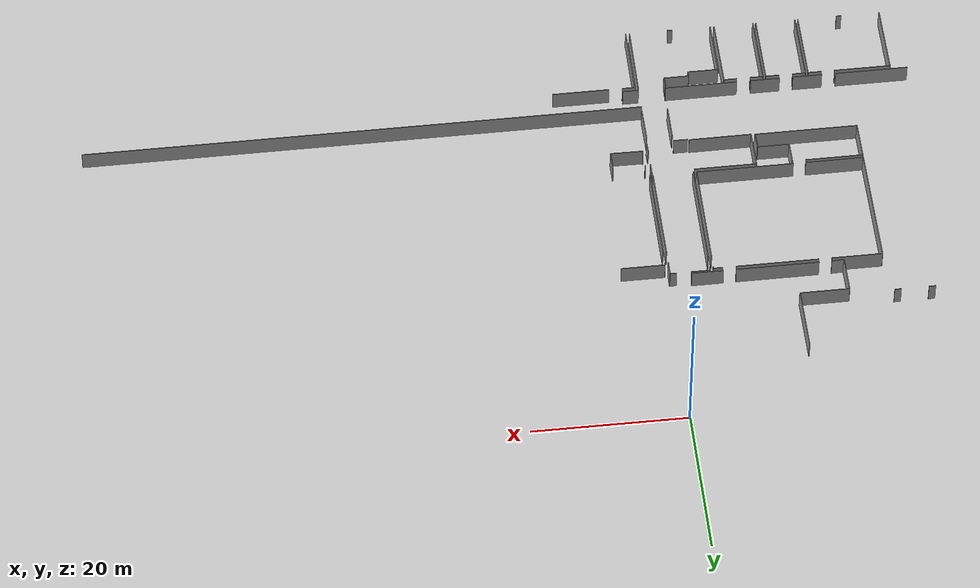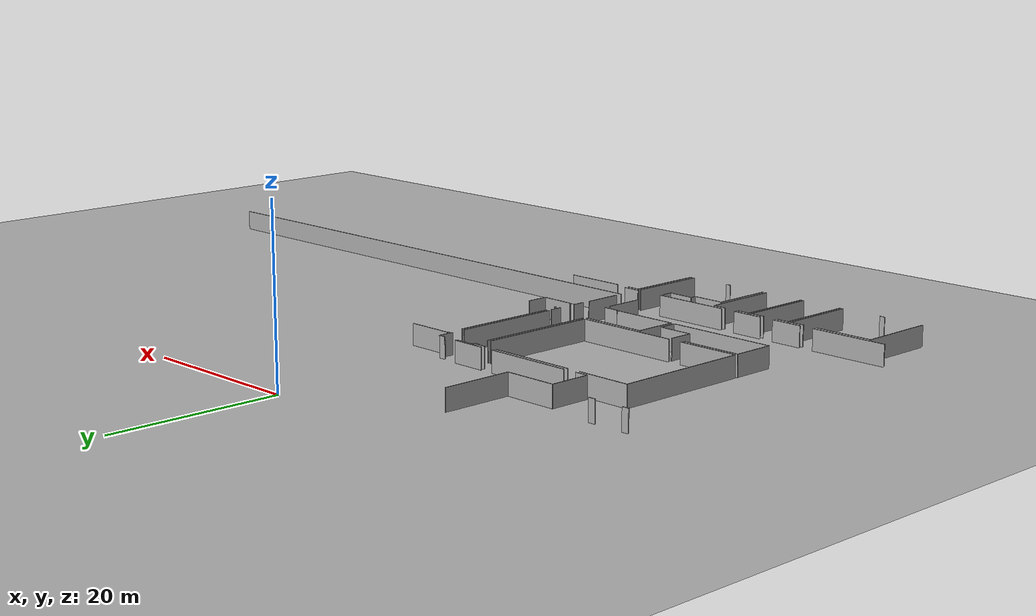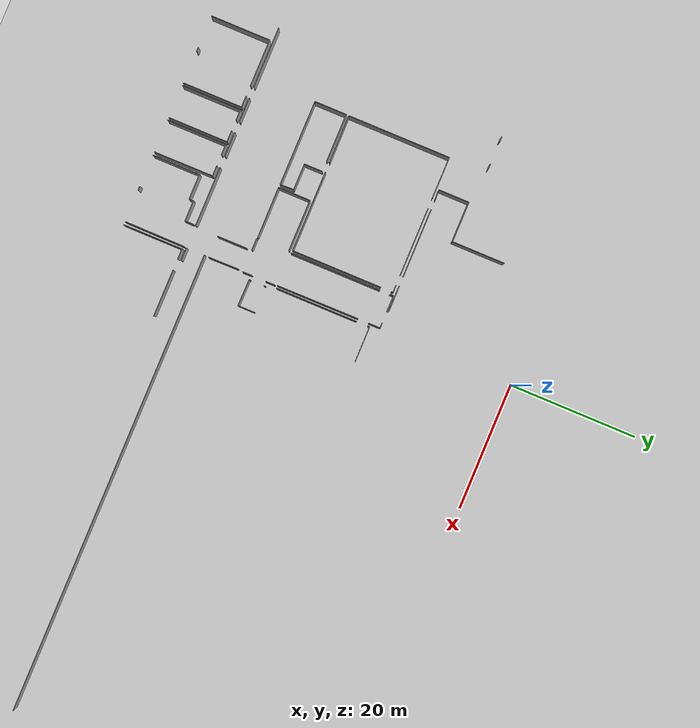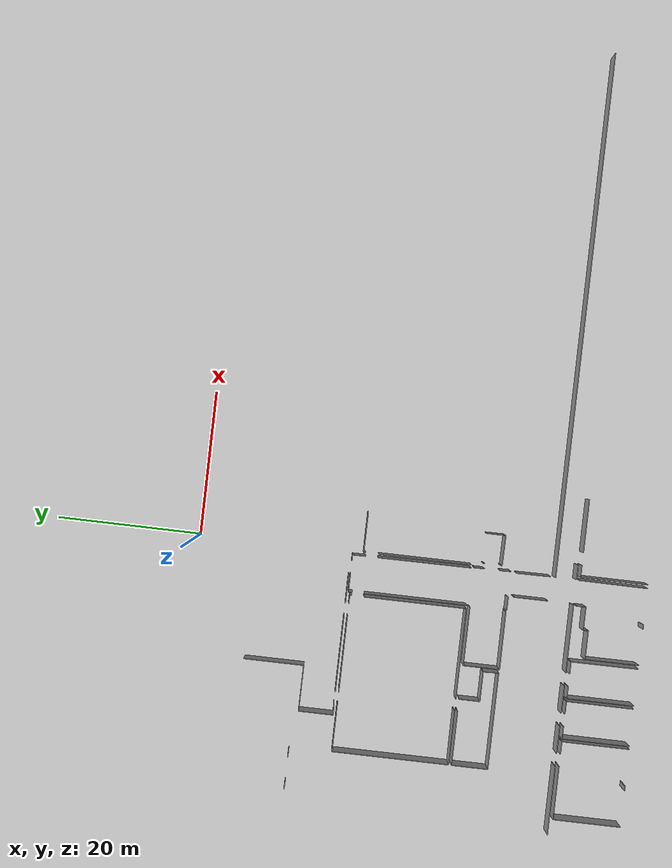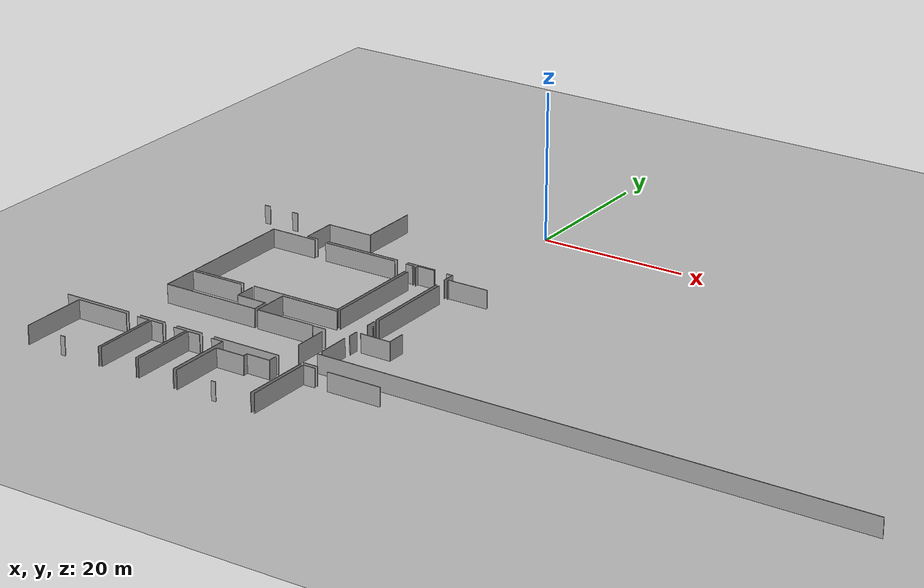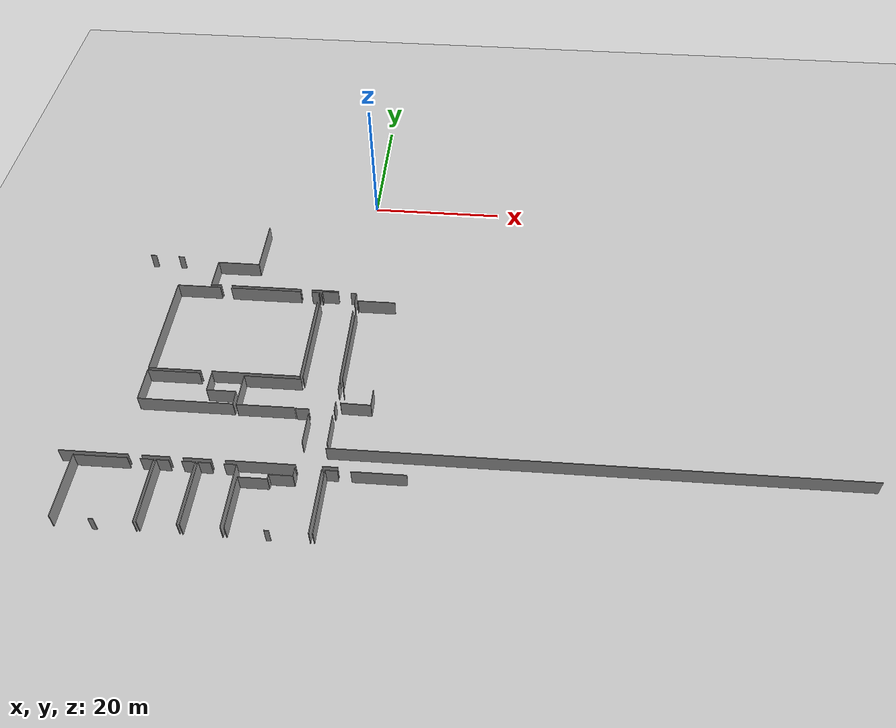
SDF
<sdf version="1.6">
 <world name="default">
  <model name="ground_plane">
   <static>1</static>
   <link name="link">
    <collision name="collision">
     <geometry><plane><normal>0 0 1</normal><size>100 100</size></plane></geometry>
     <surface><friction><ode><mu>100</mu><mu2>50</mu2></ode></friction></surface>
    </collision>
    <visual name="visual">
     <cast_shadows>0</cast_shadows>
     <geometry><plane><normal>0 0 1</normal><size>100 100</size></plane></geometry>
     <material>
      <script><uri>file://media/materials/scripts/gazebo.material</uri><name>Gazebo/Grey</name></script>
     </material>
    </visual>
   </link>
  </model>
  <model name="0510045905_A_40_1_103">
   <static>1</static>
   <link name="Wall_108">
    <collision name="Wall_108_Collision">
     <geometry><box><size>0.856075074713 0.1 2.5</size></box></geometry>
     <pose>0.428037537357 0 1.25 0 0 0</pose>
    </collision>
    <visual name="Wall_108_Visual">
     <pose>0.428037537357 0 1.25 0 0 0</pose>
     <geometry><box><size>0.856075074713 0.1 2.5</size></box></geometry>
     <material>
      <script><uri>file://media/materials/scripts/gazebo.material</uri><name>Gazebo/Grey</name></script>
      <ambient>1 1 1 1</ambient>
     </material>
    </visual>
    <pose>55.6654378407 -78.0157738114 0 0 0 3.14159265359</pose>
   </link>
   <link name="Wall_109">
    <collision name="Wall_109_Collision">
     <geometry><box><size>0.856075074713 0.1 2.5</size></box></geometry>
     <pose>0.428037537357 0 1.25 0 0 0</pose>
    </collision>
    <visual name="Wall_109_Visual">
     <pose>0.428037537357 0 1.25 0 0 0</pose>
     <geometry><box><size>0.856075074713 0.1 2.5</size></box></geometry>
     <material>
      <script><uri>file://media/materials/scripts/gazebo.material</uri><name>Gazebo/Grey</name></script>
      <ambient>1 1 1 1</ambient>
     </material>
    </visual>
    <pose>51.2685672227 -78.0157738114 0 0 0 3.14159265359</pose>
   </link>
   <link name="Wall_149">
    <collision name="Wall_149_Collision">
     <geometry><box><size>4.81691338363 0.1 2.5</size></box></geometry>
     <pose>2.40845669181 0 1.25 0 0 0</pose>
    </collision>
    <visual name="Wall_149_Visual">
     <pose>2.40845669181 0 1.25 0 0 0</pose>
     <geometry><box><size>4.81691338363 0.1 2.5</size></box></geometry>
     <material>
      <script><uri>file://media/materials/scripts/gazebo.material</uri><name>Gazebo/Grey</name></script>
      <ambient>1 1 1 1</ambient>
     </material>
    </visual>
    <pose>61.3155840942 -83.5915559983 0 0 0 1.57079632679</pose>
   </link>
   <link name="Wall_150">
    <collision name="Wall_150_Collision">
     <geometry><box><size>6.33312817649 0.1 2.5</size></box></geometry>
     <pose>3.16656408825 0 1.25 0 0 0</pose>
    </collision>
    <visual name="Wall_150_Visual">
     <pose>3.16656408825 0 1.25 0 0 0</pose>
     <geometry><box><size>6.33312817649 0.1 2.5</size></box></geometry>
     <material>
      <script><uri>file://media/materials/scripts/gazebo.material</uri><name>Gazebo/Grey</name></script>
      <ambient>1 1 1 1</ambient>
     </material>
    </visual>
    <pose>61.3155840942 -78.7746426147 0 0 0 0.0</pose>
   </link>
   <link name="Wall_151">
    <collision name="Wall_151_Collision">
     <geometry><box><size>8.3335977107 0.1 2.5</size></box></geometry>
     <pose>4.16679885535 0 1.25 0 0 0</pose>
    </collision>
    <visual name="Wall_151_Visual">
     <pose>4.16679885535 0 1.25 0 0 0</pose>
     <geometry><box><size>8.3335977107 0.1 2.5</size></box></geometry>
     <material>
      <script><uri>file://media/materials/scripts/gazebo.material</uri><name>Gazebo/Grey</name></script>
      <ambient>1 1 1 1</ambient>
     </material>
    </visual>
    <pose>67.6487122707 -78.7746426147 0 0 0 1.57079632679</pose>
   </link>
   <link name="Wall_163">
    <collision name="Wall_163_Collision">
     <geometry><box><size>4.06312062588 0.1 2.5</size></box></geometry>
     <pose>2.03156031294 0 1.25 0 0 0</pose>
    </collision>
    <visual name="Wall_163_Visual">
     <pose>2.03156031294 0 1.25 0 0 0</pose>
     <geometry><box><size>4.06312062588 0.1 2.5</size></box></geometry>
     <material>
      <script><uri>file://media/materials/scripts/gazebo.material</uri><name>Gazebo/Grey</name></script>
      <ambient>1 1 1 1</ambient>
     </material>
    </visual>
    <pose>80.8134362925 -83.5141463043 0 0 0 3.14159265359</pose>
   </link>
   <link name="Wall_164">
    <collision name="Wall_164_Collision">
     <geometry><box><size>10.6292392911 0.1 2.5</size></box></geometry>
     <pose>5.31461964557 0 1.25 0 0 0</pose>
    </collision>
    <visual name="Wall_164_Visual">
     <pose>5.31461964557 0 1.25 0 0 0</pose>
     <geometry><box><size>10.6292392911 0.1 2.5</size></box></geometry>
     <material>
      <script><uri>file://media/materials/scripts/gazebo.material</uri><name>Gazebo/Grey</name></script>
      <ambient>1 1 1 1</ambient>
     </material>
    </visual>
    <pose>75.124712093 -83.5141463043 0 0 0 3.14159265359</pose>
   </link>
   <link name="Wall_165">
    <collision name="Wall_165_Collision">
     <geometry><box><size>1.56381628693 0.1 2.5</size></box></geometry>
     <pose>0.781908143464 0 1.25 0 0 0</pose>
    </collision>
    <visual name="Wall_165_Visual">
     <pose>0.781908143464 0 1.25 0 0 0</pose>
     <geometry><box><size>1.56381628693 0.1 2.5</size></box></geometry>
     <material>
      <script><uri>file://media/materials/scripts/gazebo.material</uri><name>Gazebo/Grey</name></script>
      <ambient>1 1 1 1</ambient>
     </material>
    </visual>
    <pose>62.8774832966 -83.5141463043 0 0 0 -3.09207191234</pose>
   </link>
   <link name="Wall_344">
    <collision name="Wall_344_Collision">
     <geometry><box><size>16.1763418209 0.1 2.5</size></box></geometry>
     <pose>8.08817091045 0 1.25 0 0 0</pose>
    </collision>
    <visual name="Wall_344_Visual">
     <pose>8.08817091045 0 1.25 0 0 0</pose>
     <geometry><box><size>16.1763418209 0.1 2.5</size></box></geometry>
     <material>
      <script><uri>file://media/materials/scripts/gazebo.material</uri><name>Gazebo/Grey</name></script>
      <ambient>1 1 1 1</ambient>
     </material>
    </visual>
    <pose>56.2943598789 -100.170935832 0 0 0 1.57079632679</pose>
   </link>
   <link name="Wall_345">
    <collision name="Wall_345_Collision">
     <geometry><box><size>6.49911486456 0.1 2.5</size></box></geometry>
     <pose>3.24955743228 0 1.25 0 0 0</pose>
    </collision>
    <visual name="Wall_345_Visual">
     <pose>3.24955743228 0 1.25 0 0 0</pose>
     <geometry><box><size>6.49911486456 0.1 2.5</size></box></geometry>
     <material>
      <script><uri>file://media/materials/scripts/gazebo.material</uri><name>Gazebo/Grey</name></script>
      <ambient>1 1 1 1</ambient>
     </material>
    </visual>
    <pose>56.2943598789 -83.9945940115 0 0 0 0.0</pose>
   </link>
   <link name="Wall_346">
    <collision name="Wall_346_Collision">
     <geometry><box><size>10.6155339683 0.1 2.5</size></box></geometry>
     <pose>5.30776698413 0 1.25 0 0 0</pose>
    </collision>
    <visual name="Wall_346_Visual">
     <pose>5.30776698413 0 1.25 0 0 0</pose>
     <geometry><box><size>10.6155339683 0.1 2.5</size></box></geometry>
     <material>
      <script><uri>file://media/materials/scripts/gazebo.material</uri><name>Gazebo/Grey</name></script>
      <ambient>1 1 1 1</ambient>
     </material>
    </visual>
    <pose>64.4601942856 -83.9945940115 0 0 0 0.0</pose>
   </link>
   <link name="Wall_347">
    <collision name="Wall_347_Collision">
     <geometry><box><size>1.17535833709 0.1 2.5</size></box></geometry>
     <pose>0.587679168544 0 1.25 0 0 0</pose>
    </collision>
    <visual name="Wall_347_Visual">
     <pose>0.587679168544 0 1.25 0 0 0</pose>
     <geometry><box><size>1.17535833709 0.1 2.5</size></box></geometry>
     <material>
      <script><uri>file://media/materials/scripts/gazebo.material</uri><name>Gazebo/Grey</name></script>
      <ambient>1 1 1 1</ambient>
     </material>
    </visual>
    <pose>76.7937158557 -83.9945940115 0 0 0 0.0</pose>
   </link>
   <link name="Wall_348">
    <collision name="Wall_348_Collision">
     <geometry><box><size>0.304562730405 0.1 2.5</size></box></geometry>
     <pose>0.152281365202 0 1.25 0 0 0</pose>
    </collision>
    <visual name="Wall_348_Visual">
     <pose>0.152281365202 0 1.25 0 0 0</pose>
     <geometry><box><size>0.304562730405 0.1 2.5</size></box></geometry>
     <material>
      <script><uri>file://media/materials/scripts/gazebo.material</uri><name>Gazebo/Grey</name></script>
      <ambient>1 1 1 1</ambient>
     </material>
    </visual>
    <pose>77.9690741928 -83.9945940115 0 0 0 -1.57079632679</pose>
   </link>
   <link name="Wall_349">
    <collision name="Wall_349_Collision">
     <geometry><box><size>14.1763798912 0.1 2.5</size></box></geometry>
     <pose>7.08818994562 0 1.25 0 0 0</pose>
    </collision>
    <visual name="Wall_349_Visual">
     <pose>7.08818994562 0 1.25 0 0 0</pose>
     <geometry><box><size>14.1763798912 0.1 2.5</size></box></geometry>
     <material>
      <script><uri>file://media/materials/scripts/gazebo.material</uri><name>Gazebo/Grey</name></script>
      <ambient>1 1 1 1</ambient>
     </material>
    </visual>
    <pose>77.9690741928 -85.9580084135 0 0 0 -1.57079632679</pose>
   </link>
   <link name="Wall_350">
    <collision name="Wall_350_Collision">
     <geometry><box><size>12.5850396249 0.1 2.5</size></box></geometry>
     <pose>6.29251981244 0 1.25 0 0 0</pose>
    </collision>
    <visual name="Wall_350_Visual">
     <pose>6.29251981244 0 1.25 0 0 0</pose>
     <geometry><box><size>12.5850396249 0.1 2.5</size></box></geometry>
     <material>
      <script><uri>file://media/materials/scripts/gazebo.material</uri><name>Gazebo/Grey</name></script>
      <ambient>1 1 1 1</ambient>
     </material>
    </visual>
    <pose>77.9690741928 -100.134388305 0 0 0 3.14159265359</pose>
   </link>
   <link name="Wall_351">
    <collision name="Wall_351_Collision">
     <geometry><box><size>7.51618943868 0.1 2.5</size></box></geometry>
     <pose>3.75809471934 0 1.25 0 0 0</pose>
    </collision>
    <visual name="Wall_351_Visual">
     <pose>3.75809471934 0 1.25 0 0 0</pose>
     <geometry><box><size>7.51618943868 0.1 2.5</size></box></geometry>
     <material>
      <script><uri>file://media/materials/scripts/gazebo.material</uri><name>Gazebo/Grey</name></script>
      <ambient>1 1 1 1</ambient>
     </material>
    </visual>
    <pose>63.8104604608 -100.134388305 0 0 0 -3.13673012691</pose>
   </link>
   <link name="Wall_352">
    <collision name="Wall_352_Collision">
     <geometry><box><size>14.2791698128 0.1 2.5</size></box></geometry>
     <pose>7.13958490638 0 1.25 0 0 0</pose>
    </collision>
    <visual name="Wall_352_Visual">
     <pose>7.13958490638 0 1.25 0 0 0</pose>
     <geometry><box><size>14.2791698128 0.1 2.5</size></box></geometry>
     <material>
      <script><uri>file://media/materials/scripts/gazebo.material</uri><name>Gazebo/Grey</name></script>
      <ambient>1 1 1 1</ambient>
     </material>
    </visual>
    <pose>78.3964772244 -100.215097428 0 0 0 1.57079632679</pose>
   </link>
   <link name="Wall_353">
    <collision name="Wall_353_Collision">
     <geometry><box><size>0.594912533391 0.1 2.5</size></box></geometry>
     <pose>0.297456266695 0 1.25 0 0 0</pose>
    </collision>
    <visual name="Wall_353_Visual">
     <pose>0.297456266695 0 1.25 0 0 0</pose>
     <geometry><box><size>0.594912533391 0.1 2.5</size></box></geometry>
     <material>
      <script><uri>file://media/materials/scripts/gazebo.material</uri><name>Gazebo/Grey</name></script>
      <ambient>1 1 1 1</ambient>
     </material>
    </visual>
    <pose>78.3964772244 -84.3400189083 0 0 0 1.57079632679</pose>
   </link>
   <link name="Wall_354">
    <collision name="Wall_354_Collision">
     <geometry><box><size>2.43650184324 0.1 2.5</size></box></geometry>
     <pose>1.21825092162 0 1.25 0 0 0</pose>
    </collision>
    <visual name="Wall_354_Visual">
     <pose>1.21825092162 0 1.25 0 0 0</pose>
     <geometry><box><size>2.43650184324 0.1 2.5</size></box></geometry>
     <material>
      <script><uri>file://media/materials/scripts/gazebo.material</uri><name>Gazebo/Grey</name></script>
      <ambient>1 1 1 1</ambient>
     </material>
    </visual>
    <pose>78.3964772244 -83.7451063749 0 0 0 0.0</pose>
   </link>
   <link name="Wall_355">
    <collision name="Wall_355_Collision">
     <geometry><box><size>0.845415379149 0.1 2.5</size></box></geometry>
     <pose>0.422707689574 0 1.25 0 0 0</pose>
    </collision>
    <visual name="Wall_355_Visual">
     <pose>0.422707689574 0 1.25 0 0 0</pose>
     <geometry><box><size>0.845415379149 0.1 2.5</size></box></geometry>
     <material>
      <script><uri>file://media/materials/scripts/gazebo.material</uri><name>Gazebo/Grey</name></script>
      <ambient>1 1 1 1</ambient>
     </material>
    </visual>
    <pose>82.7144153347 -83.7451063749 0 0 0 0.0</pose>
   </link>
   <link name="Wall_356">
    <collision name="Wall_356_Collision">
     <geometry><box><size>1.86011687595 0.1 2.5</size></box></geometry>
     <pose>0.930058437974 0 1.25 0 0 0</pose>
    </collision>
    <visual name="Wall_356_Visual">
     <pose>0.930058437974 0 1.25 0 0 0</pose>
     <geometry><box><size>1.86011687595 0.1 2.5</size></box></geometry>
     <material>
      <script><uri>file://media/materials/scripts/gazebo.material</uri><name>Gazebo/Grey</name></script>
      <ambient>1 1 1 1</ambient>
     </material>
    </visual>
    <pose>83.5598307139 -83.7451063749 0 0 0 -1.57079632679</pose>
   </link>
   <link name="Wall_357">
    <collision name="Wall_357_Collision">
     <geometry><box><size>12.9394724955 0.1 2.5</size></box></geometry>
     <pose>6.46973624777 0 1.25 0 0 0</pose>
    </collision>
    <visual name="Wall_357_Visual">
     <pose>6.46973624777 0 1.25 0 0 0</pose>
     <geometry><box><size>12.9394724955 0.1 2.5</size></box></geometry>
     <material>
      <script><uri>file://media/materials/scripts/gazebo.material</uri><name>Gazebo/Grey</name></script>
      <ambient>1 1 1 1</ambient>
     </material>
    </visual>
    <pose>83.5598307139 -87.2757498271 0 0 0 -1.56640264748</pose>
   </link>
   <link name="Wall_359">
    <collision name="Wall_359_Collision">
     <geometry><box><size>12.8286898092 0.1 2.5</size></box></geometry>
     <pose>6.4143449046 0 1.25 0 0 0</pose>
    </collision>
    <visual name="Wall_359_Visual">
     <pose>6.4143449046 0 1.25 0 0 0</pose>
     <geometry><box><size>12.8286898092 0.1 2.5</size></box></geometry>
     <material>
      <script><uri>file://media/materials/scripts/gazebo.material</uri><name>Gazebo/Grey</name></script>
      <ambient>1 1 1 1</ambient>
     </material>
    </visual>
    <pose>84.0138829845 -100.170935832 0 0 0 1.57079632679</pose>
   </link>
   <link name="Wall_360">
    <collision name="Wall_360_Collision">
     <geometry><box><size>0.326389726084 0.1 2.5</size></box></geometry>
     <pose>0.163194863042 0 1.25 0 0 0</pose>
    </collision>
    <visual name="Wall_360_Visual">
     <pose>0.163194863042 0 1.25 0 0 0</pose>
     <geometry><box><size>0.326389726084 0.1 2.5</size></box></geometry>
     <material>
      <script><uri>file://media/materials/scripts/gazebo.material</uri><name>Gazebo/Grey</name></script>
      <ambient>1 1 1 1</ambient>
     </material>
    </visual>
    <pose>84.0138829845 -85.5684219209 0 0 0 1.57079632679</pose>
   </link>
   <link name="Wall_361">
    <collision name="Wall_361_Collision">
     <geometry><box><size>5.60852268041 0.1 2.5</size></box></geometry>
     <pose>2.8042613402 0 1.25 0 0 0</pose>
    </collision>
    <visual name="Wall_361_Visual">
     <pose>2.8042613402 0 1.25 0 0 0</pose>
     <geometry><box><size>5.60852268041 0.1 2.5</size></box></geometry>
     <material>
      <script><uri>file://media/materials/scripts/gazebo.material</uri><name>Gazebo/Grey</name></script>
      <ambient>1 1 1 1</ambient>
     </material>
    </visual>
    <pose>84.0138829845 -85.2420321948 0 0 0 0.0</pose>
   </link>
   <link name="Wall_366">
    <collision name="Wall_366_Collision">
     <geometry><box><size>13.3505072873 0.1 2.5</size></box></geometry>
     <pose>6.67525364365 0 1.25 0 0 0</pose>
    </collision>
    <visual name="Wall_366_Visual">
     <pose>6.67525364365 0 1.25 0 0 0</pose>
     <geometry><box><size>13.3505072873 0.1 2.5</size></box></geometry>
     <material>
      <script><uri>file://media/materials/scripts/gazebo.material</uri><name>Gazebo/Grey</name></script>
      <ambient>1 1 1 1</ambient>
     </material>
    </visual>
    <pose>69.635476482 -105.598751293 0 0 0 3.14159265359</pose>
   </link>
   <link name="Wall_367">
    <collision name="Wall_367_Collision">
     <geometry><box><size>5.0230008312 0.1 2.5</size></box></geometry>
     <pose>2.5115004156 0 1.25 0 0 0</pose>
    </collision>
    <visual name="Wall_367_Visual">
     <pose>2.5115004156 0 1.25 0 0 0</pose>
     <geometry><box><size>5.0230008312 0.1 2.5</size></box></geometry>
     <material>
      <script><uri>file://media/materials/scripts/gazebo.material</uri><name>Gazebo/Grey</name></script>
      <ambient>1 1 1 1</ambient>
     </material>
    </visual>
    <pose>56.2849691947 -105.598751293 0 0 0 1.57079632679</pose>
   </link>
   <link name="Wall_368">
    <collision name="Wall_368_Collision">
     <geometry><box><size>7.44300552654 0.1 2.5</size></box></geometry>
     <pose>3.72150276327 0 1.25 0 0 0</pose>
    </collision>
    <visual name="Wall_368_Visual">
     <pose>3.72150276327 0 1.25 0 0 0</pose>
     <geometry><box><size>7.44300552654 0.1 2.5</size></box></geometry>
     <material>
      <script><uri>file://media/materials/scripts/gazebo.material</uri><name>Gazebo/Grey</name></script>
      <ambient>1 1 1 1</ambient>
     </material>
    </visual>
    <pose>56.2849691947 -100.575750462 0 0 0 0.0</pose>
   </link>
   <link name="Wall_369">
    <collision name="Wall_369_Collision">
     <geometry><box><size>2.8783716046 0.1 2.5</size></box></geometry>
     <pose>1.4391858023 0 1.25 0 0 0</pose>
    </collision>
    <visual name="Wall_369_Visual">
     <pose>1.4391858023 0 1.25 0 0 0</pose>
     <geometry><box><size>2.8783716046 0.1 2.5</size></box></geometry>
     <material>
      <script><uri>file://media/materials/scripts/gazebo.material</uri><name>Gazebo/Grey</name></script>
      <ambient>1 1 1 1</ambient>
     </material>
    </visual>
    <pose>65.453322589 -100.575750462 0 0 0 -1.57079632679</pose>
   </link>
   <link name="Wall_370">
    <collision name="Wall_370_Collision">
     <geometry><box><size>4.11388108094 0.1 2.5</size></box></geometry>
     <pose>2.05694054047 0 1.25 0 0 0</pose>
    </collision>
    <visual name="Wall_370_Visual">
     <pose>2.05694054047 0 1.25 0 0 0</pose>
     <geometry><box><size>4.11388108094 0.1 2.5</size></box></geometry>
     <material>
      <script><uri>file://media/materials/scripts/gazebo.material</uri><name>Gazebo/Grey</name></script>
      <ambient>1 1 1 1</ambient>
     </material>
    </visual>
    <pose>65.453322589 -103.454122066 0 0 0 0.0</pose>
   </link>
   <link name="Wall_371">
    <collision name="Wall_371_Collision">
     <geometry><box><size>2.14571566067 0.1 2.5</size></box></geometry>
     <pose>1.07285783034 0 1.25 0 0 0</pose>
    </collision>
    <visual name="Wall_371_Visual">
     <pose>1.07285783034 0 1.25 0 0 0</pose>
     <geometry><box><size>2.14571566067 0.1 2.5</size></box></geometry>
     <material>
      <script><uri>file://media/materials/scripts/gazebo.material</uri><name>Gazebo/Grey</name></script>
      <ambient>1 1 1 1</ambient>
     </material>
    </visual>
    <pose>69.56720367 -103.454122066 0 0 0 -1.53897275462</pose>
   </link>
   <link name="Wall_382">
    <collision name="Wall_382_Collision">
     <geometry><box><size>1.8431121235 0.1 2.5</size></box></geometry>
     <pose>0.92155606175 0 1.25 0 0 0</pose>
    </collision>
    <visual name="Wall_382_Visual">
     <pose>0.92155606175 0 1.25 0 0 0</pose>
     <geometry><box><size>1.8431121235 0.1 2.5</size></box></geometry>
     <material>
      <script><uri>file://media/materials/scripts/gazebo.material</uri><name>Gazebo/Grey</name></script>
      <ambient>1 1 1 1</ambient>
     </material>
    </visual>
    <pose>80.2185237591 -105.709662887 0 0 0 3.14159265359</pose>
   </link>
   <link name="Wall_383">
    <collision name="Wall_383_Collision">
     <geometry><box><size>1.45910928091 0.1 2.5</size></box></geometry>
     <pose>0.729554640457 0 1.25 0 0 0</pose>
    </collision>
    <visual name="Wall_383_Visual">
     <pose>0.729554640457 0 1.25 0 0 0</pose>
     <geometry><box><size>1.45910928091 0.1 2.5</size></box></geometry>
     <material>
      <script><uri>file://media/materials/scripts/gazebo.material</uri><name>Gazebo/Grey</name></script>
      <ambient>1 1 1 1</ambient>
     </material>
    </visual>
    <pose>83.6986605585 -100.583618332 0 0 0 -1.57079632679</pose>
   </link>
   <link name="Wall_384">
    <collision name="Wall_384_Collision">
     <geometry><box><size>1.47940429747 0.1 2.5</size></box></geometry>
     <pose>0.739702148734 0 1.25 0 0 0</pose>
    </collision>
    <visual name="Wall_384_Visual">
     <pose>0.739702148734 0 1.25 0 0 0</pose>
     <geometry><box><size>1.47940429747 0.1 2.5</size></box></geometry>
     <material>
      <script><uri>file://media/materials/scripts/gazebo.material</uri><name>Gazebo/Grey</name></script>
      <ambient>1 1 1 1</ambient>
     </material>
    </visual>
    <pose>83.6986605585 -104.230503226 0 0 0 -1.55261027431</pose>
   </link>
   <link name="Wall_385">
    <collision name="Wall_385_Collision">
     <geometry><box><size>5.02325463348 0.1 2.5</size></box></geometry>
     <pose>2.51162731674 0 1.25 0 0 0</pose>
    </collision>
    <visual name="Wall_385_Visual">
     <pose>2.51162731674 0 1.25 0 0 0</pose>
     <geometry><box><size>5.02325463348 0.1 2.5</size></box></geometry>
     <material>
      <script><uri>file://media/materials/scripts/gazebo.material</uri><name>Gazebo/Grey</name></script>
      <ambient>1 1 1 1</ambient>
     </material>
    </visual>
    <pose>70.1194774211 -105.649004143 0 0 0 1.57079632679</pose>
   </link>
   <link name="Wall_386">
    <collision name="Wall_386_Collision">
     <geometry><box><size>8.09350075823 0.1 2.5</size></box></geometry>
     <pose>4.04675037912 0 1.25 0 0 0</pose>
    </collision>
    <visual name="Wall_386_Visual">
     <pose>4.04675037912 0 1.25 0 0 0</pose>
     <geometry><box><size>8.09350075823 0.1 2.5</size></box></geometry>
     <material>
      <script><uri>file://media/materials/scripts/gazebo.material</uri><name>Gazebo/Grey</name></script>
      <ambient>1 1 1 1</ambient>
     </material>
    </visual>
    <pose>70.1194774211 -100.62574951 0 0 0 0.0</pose>
   </link>
   <link name="Wall_387">
    <collision name="Wall_387_Collision">
     <geometry><box><size>8.09354631899 0.1 2.5</size></box></geometry>
     <pose>4.0467731595 0 1.25 0 0 0</pose>
    </collision>
    <visual name="Wall_387_Visual">
     <pose>4.0467731595 0 1.25 0 0 0</pose>
     <geometry><box><size>8.09354631899 0.1 2.5</size></box></geometry>
     <material>
      <script><uri>file://media/materials/scripts/gazebo.material</uri><name>Gazebo/Grey</name></script>
      <ambient>1 1 1 1</ambient>
     </material>
    </visual>
    <pose>78.2129781793 -105.6218473 0 0 0 -3.13823727718</pose>
   </link>
   <link name="Wall_388">
    <collision name="Wall_388_Collision">
     <geometry><box><size>2.60350374041 0.1 2.5</size></box></geometry>
     <pose>1.30175187021 0 1.25 0 0 0</pose>
    </collision>
    <visual name="Wall_388_Visual">
     <pose>1.30175187021 0 1.25 0 0 0</pose>
     <geometry><box><size>2.60350374041 0.1 2.5</size></box></geometry>
     <material>
      <script><uri>file://media/materials/scripts/gazebo.material</uri><name>Gazebo/Grey</name></script>
      <ambient>1 1 1 1</ambient>
     </material>
    </visual>
    <pose>88.5929836361 -104.430753222 0 0 0 1.57079632679</pose>
   </link>
   <link name="Wall_390">
    <collision name="Wall_390_Collision">
     <geometry><box><size>0.158880224361 0.1 2.5</size></box></geometry>
     <pose>0.0794401121806 0 1.25 0 0 0</pose>
    </collision>
    <visual name="Wall_390_Visual">
     <pose>0.0794401121806 0 1.25 0 0 0</pose>
     <geometry><box><size>0.158880224361 0.1 2.5</size></box></geometry>
     <material>
      <script><uri>file://media/materials/scripts/gazebo.material</uri><name>Gazebo/Grey</name></script>
      <ambient>1 1 1 1</ambient>
     </material>
    </visual>
    <pose>84.3920483747 -101.827249481 0 0 0 -1.57079632679</pose>
   </link>
   <link name="Wall_391">
    <collision name="Wall_391_Collision">
     <geometry><box><size>0.157611212985 0.1 2.5</size></box></geometry>
     <pose>0.0788056064923 0 1.25 0 0 0</pose>
    </collision>
    <visual name="Wall_391_Visual">
     <pose>0.0788056064923 0 1.25 0 0 0</pose>
     <geometry><box><size>0.157611212985 0.1 2.5</size></box></geometry>
     <material>
      <script><uri>file://media/materials/scripts/gazebo.material</uri><name>Gazebo/Grey</name></script>
      <ambient>1 1 1 1</ambient>
     </material>
    </visual>
    <pose>84.3920483747 -104.220604938 0 0 0 -1.57079632679</pose>
   </link>
   <link name="Wall_392">
    <collision name="Wall_392_Collision">
     <geometry><box><size>4.20126376394 0.1 2.5</size></box></geometry>
     <pose>2.10063188197 0 1.25 0 0 0</pose>
    </collision>
    <visual name="Wall_392_Visual">
     <pose>2.10063188197 0 1.25 0 0 0</pose>
     <geometry><box><size>4.20126376394 0.1 2.5</size></box></geometry>
     <material>
      <script><uri>file://media/materials/scripts/gazebo.material</uri><name>Gazebo/Grey</name></script>
      <ambient>1 1 1 1</ambient>
     </material>
    </visual>
    <pose>84.3920483747 -104.378216151 0 0 0 -0.012505389641</pose>
   </link>
   <link name="Wall_393">
    <collision name="Wall_393_Collision">
     <geometry><box><size>4.65600274106 0.1 2.5</size></box></geometry>
     <pose>2.32800137053 0 1.25 0 0 0</pose>
    </collision>
    <visual name="Wall_393_Visual">
     <pose>2.32800137053 0 1.25 0 0 0</pose>
     <geometry><box><size>4.65600274106 0.1 2.5</size></box></geometry>
     <material>
      <script><uri>file://media/materials/scripts/gazebo.material</uri><name>Gazebo/Grey</name></script>
      <ambient>1 1 1 1</ambient>
     </material>
    </visual>
    <pose>80.2822281302 -111.189254012 0 0 0 1.57079632679</pose>
   </link>
   <link name="Wall_394">
    <collision name="Wall_394_Collision">
     <geometry><box><size>4.65625509075 0.1 2.5</size></box></geometry>
     <pose>2.32812754537 0 1.25 0 0 0</pose>
    </collision>
    <visual name="Wall_394_Visual">
     <pose>2.32812754537 0 1.25 0 0 0</pose>
     <geometry><box><size>4.65625509075 0.1 2.5</size></box></geometry>
     <material>
      <script><uri>file://media/materials/scripts/gazebo.material</uri><name>Gazebo/Grey</name></script>
      <ambient>1 1 1 1</ambient>
     </material>
    </visual>
    <pose>83.6047537166 -106.533251271 0 0 0 -1.56038514669</pose>
   </link>
   <link name="Wall_397">
    <collision name="Wall_397_Collision">
     <geometry><box><size>72.7516608186 0.1 2.5</size></box></geometry>
     <pose>36.3758304093 0 1.25 0 0 0</pose>
    </collision>
    <visual name="Wall_397_Visual">
     <pose>36.3758304093 0 1.25 0 0 0</pose>
     <geometry><box><size>72.7516608186 0.1 2.5</size></box></geometry>
     <material>
      <script><uri>file://media/materials/scripts/gazebo.material</uri><name>Gazebo/Grey</name></script>
      <ambient>1 1 1 1</ambient>
     </material>
    </visual>
    <pose>83.5849571391 -111.906753044 0 0 0 0.0</pose>
   </link>
   <link name="Wall_410">
    <collision name="Wall_410_Collision">
     <geometry><box><size>2.05351420975 0.1 2.5</size></box></geometry>
     <pose>1.02675710488 0 1.25 0 0 0</pose>
    </collision>
    <visual name="Wall_410_Visual">
     <pose>1.02675710488 0 1.25 0 0 0</pose>
     <geometry><box><size>2.05351420975 0.1 2.5</size></box></geometry>
     <material>
      <script><uri>file://media/materials/scripts/gazebo.material</uri><name>Gazebo/Grey</name></script>
      <ambient>1 1 1 1</ambient>
     </material>
    </visual>
    <pose>85.6691814242 -114.787408869 0 0 0 3.14159265359</pose>
   </link>
   <link name="Wall_411">
    <collision name="Wall_411_Collision">
     <geometry><box><size>9.40058247622 0.1 2.5</size></box></geometry>
     <pose>4.70029123811 0 1.25 0 0 0</pose>
    </collision>
    <visual name="Wall_411_Visual">
     <pose>4.70029123811 0 1.25 0 0 0</pose>
     <geometry><box><size>9.40058247622 0.1 2.5</size></box></geometry>
     <material>
      <script><uri>file://media/materials/scripts/gazebo.material</uri><name>Gazebo/Grey</name></script>
      <ambient>1 1 1 1</ambient>
     </material>
    </visual>
    <pose>80.102282317 -114.787408869 0 0 0 3.14159265359</pose>
   </link>
   <link name="Wall_412">
    <collision name="Wall_412_Collision">
     <geometry><box><size>3.80703413006 0.1 2.5</size></box></geometry>
     <pose>1.90351706503 0 1.25 0 0 0</pose>
    </collision>
    <visual name="Wall_412_Visual">
     <pose>1.90351706503 0 1.25 0 0 0</pose>
     <geometry><box><size>3.80703413006 0.1 2.5</size></box></geometry>
     <material>
      <script><uri>file://media/materials/scripts/gazebo.material</uri><name>Gazebo/Grey</name></script>
      <ambient>1 1 1 1</ambient>
     </material>
    </visual>
    <pose>68.8773690856 -114.787408869 0 0 0 3.14159265359</pose>
   </link>
   <link name="Wall_413">
    <collision name="Wall_413_Collision">
     <geometry><box><size>3.81667861652 0.1 2.5</size></box></geometry>
     <pose>1.90833930826 0 1.25 0 0 0</pose>
    </collision>
    <visual name="Wall_413_Visual">
     <pose>1.90833930826 0 1.25 0 0 0</pose>
     <geometry><box><size>3.81667861652 0.1 2.5</size></box></geometry>
     <material>
      <script><uri>file://media/materials/scripts/gazebo.material</uri><name>Gazebo/Grey</name></script>
      <ambient>1 1 1 1</ambient>
     </material>
    </visual>
    <pose>63.3274747308 -114.787408869 0 0 0 3.14159265359</pose>
   </link>
   <link name="Wall_414">
    <collision name="Wall_414_Collision">
     <geometry><box><size>9.47875357703 0.1 2.5</size></box></geometry>
     <pose>4.73937678851 0 1.25 0 0 0</pose>
    </collision>
    <visual name="Wall_414_Visual">
     <pose>4.73937678851 0 1.25 0 0 0</pose>
     <geometry><box><size>9.47875357703 0.1 2.5</size></box></geometry>
     <material>
      <script><uri>file://media/materials/scripts/gazebo.material</uri><name>Gazebo/Grey</name></script>
      <ambient>1 1 1 1</ambient>
     </material>
    </visual>
    <pose>57.7202210618 -114.787408869 0 0 0 3.14159265359</pose>
   </link>
   <link name="Wall_476">
    <collision name="Wall_476_Collision">
     <geometry><box><size>0.656078881747 0.1 2.5</size></box></geometry>
     <pose>0.328039440874 0 1.25 0 0 0</pose>
    </collision>
    <visual name="Wall_476_Visual">
     <pose>0.328039440874 0 1.25 0 0 0</pose>
     <geometry><box><size>0.656078881747 0.1 2.5</size></box></geometry>
     <material>
      <script><uri>file://media/materials/scripts/gazebo.material</uri><name>Gazebo/Grey</name></script>
      <ambient>1 1 1 1</ambient>
     </material>
    </visual>
    <pose>56.1397942933 -124.667677646 0 0 0 3.14159265359</pose>
   </link>
   <link name="Wall_477">
    <collision name="Wall_477_Collision">
     <geometry><box><size>9.34601498702 0.1 2.5</size></box></geometry>
     <pose>4.67300749351 0 1.25 0 0 0</pose>
    </collision>
    <visual name="Wall_477_Visual">
     <pose>4.67300749351 0 1.25 0 0 0</pose>
     <geometry><box><size>9.34601498702 0.1 2.5</size></box></geometry>
     <material>
      <script><uri>file://media/materials/scripts/gazebo.material</uri><name>Gazebo/Grey</name></script>
      <ambient>1 1 1 1</ambient>
     </material>
    </visual>
    <pose>50.4363495619 -124.667677646 0 0 0 1.57079632679</pose>
   </link>
   <link name="Wall_478">
    <collision name="Wall_478_Collision">
     <geometry><box><size>7.32803309582 0.1 2.5</size></box></geometry>
     <pose>3.66401654791 0 1.25 0 0 0</pose>
    </collision>
    <visual name="Wall_478_Visual">
     <pose>3.66401654791 0 1.25 0 0 0</pose>
     <geometry><box><size>7.32803309582 0.1 2.5</size></box></geometry>
     <material>
      <script><uri>file://media/materials/scripts/gazebo.material</uri><name>Gazebo/Grey</name></script>
      <ambient>1 1 1 1</ambient>
     </material>
    </visual>
    <pose>50.4363495619 -115.321662659 0 0 0 0.0</pose>
   </link>
   <link name="Wall_479">
    <collision name="Wall_479_Collision">
     <geometry><box><size>1.77763113646 0.1 2.5</size></box></geometry>
     <pose>0.888815568232 0 1.25 0 0 0</pose>
    </collision>
    <visual name="Wall_479_Visual">
     <pose>0.888815568232 0 1.25 0 0 0</pose>
     <geometry><box><size>1.77763113646 0.1 2.5</size></box></geometry>
     <material>
      <script><uri>file://media/materials/scripts/gazebo.material</uri><name>Gazebo/Grey</name></script>
      <ambient>1 1 1 1</ambient>
     </material>
    </visual>
    <pose>59.4651117047 -115.321662659 0 0 0 0.0</pose>
   </link>
   <link name="Wall_480">
    <collision name="Wall_480_Collision">
     <geometry><box><size>9.34601636549 0.1 2.5</size></box></geometry>
     <pose>4.67300818274 0 1.25 0 0 0</pose>
    </collision>
    <visual name="Wall_480_Visual">
     <pose>4.67300818274 0 1.25 0 0 0</pose>
     <geometry><box><size>9.34601636549 0.1 2.5</size></box></geometry>
     <material>
      <script><uri>file://media/materials/scripts/gazebo.material</uri><name>Gazebo/Grey</name></script>
      <ambient>1 1 1 1</ambient>
     </material>
    </visual>
    <pose>61.2427428412 -115.321662659 0 0 0 -1.57133945079</pose>
   </link>
   <link name="Wall_481">
    <collision name="Wall_481_Collision">
     <geometry><box><size>9.3122592844 0.1 2.5</size></box></geometry>
     <pose>4.6561296422 0 1.25 0 0 0</pose>
    </collision>
    <visual name="Wall_481_Visual">
     <pose>4.6561296422 0 1.25 0 0 0</pose>
     <geometry><box><size>9.3122592844 0.1 2.5</size></box></geometry>
     <material>
      <script><uri>file://media/materials/scripts/gazebo.material</uri><name>Gazebo/Grey</name></script>
      <ambient>1 1 1 1</ambient>
     </material>
    </visual>
    <pose>61.6163397905 -124.623008445 0 0 0 1.57079632679</pose>
   </link>
   <link name="Wall_482">
    <collision name="Wall_482_Collision">
     <geometry><box><size>1.70022144249 0.1 2.5</size></box></geometry>
     <pose>0.850110721243 0 1.25 0 0 0</pose>
    </collision>
    <visual name="Wall_482_Visual">
     <pose>0.850110721243 0 1.25 0 0 0</pose>
     <geometry><box><size>1.70022144249 0.1 2.5</size></box></geometry>
     <material>
      <script><uri>file://media/materials/scripts/gazebo.material</uri><name>Gazebo/Grey</name></script>
      <ambient>1 1 1 1</ambient>
     </material>
    </visual>
    <pose>61.6163397905 -115.310749161 0 0 0 0.0</pose>
   </link>
   <link name="Wall_483">
    <collision name="Wall_483_Collision">
     <geometry><box><size>1.80224995717 0.1 2.5</size></box></geometry>
     <pose>0.901124978585 0 1.25 0 0 0</pose>
    </collision>
    <visual name="Wall_483_Visual">
     <pose>0.901124978585 0 1.25 0 0 0</pose>
     <geometry><box><size>1.80224995717 0.1 2.5</size></box></geometry>
     <material>
      <script><uri>file://media/materials/scripts/gazebo.material</uri><name>Gazebo/Grey</name></script>
      <ambient>1 1 1 1</ambient>
     </material>
    </visual>
    <pose>65.0294727892 -115.310749161 0 0 0 0.0</pose>
   </link>
   <link name="Wall_484">
    <collision name="Wall_484_Collision">
     <geometry><box><size>9.31227389717 0.1 2.5</size></box></geometry>
     <pose>4.65613694858 0 1.25 0 0 0</pose>
    </collision>
    <visual name="Wall_484_Visual">
     <pose>4.65613694858 0 1.25 0 0 0</pose>
     <geometry><box><size>9.31227389717 0.1 2.5</size></box></geometry>
     <material>
      <script><uri>file://media/materials/scripts/gazebo.material</uri><name>Gazebo/Grey</name></script>
      <ambient>1 1 1 1</ambient>
     </material>
    </visual>
    <pose>66.8317227464 -115.310749161 0 0 0 -1.57256787655</pose>
   </link>
   <link name="Wall_485">
    <collision name="Wall_485_Collision">
     <geometry><box><size>9.3307868505 0.1 2.5</size></box></geometry>
     <pose>4.66539342525 0 1.25 0 0 0</pose>
    </collision>
    <visual name="Wall_485_Visual">
     <pose>4.66539342525 0 1.25 0 0 0</pose>
     <geometry><box><size>9.3307868505 0.1 2.5</size></box></geometry>
     <material>
      <script><uri>file://media/materials/scripts/gazebo.material</uri><name>Gazebo/Grey</name></script>
      <ambient>1 1 1 1</ambient>
     </material>
    </visual>
    <pose>67.2063349048 -124.654987532 0 0 0 1.57079632679</pose>
   </link>
   <link name="Wall_486">
    <collision name="Wall_486_Collision">
     <geometry><box><size>1.69336878105 0.1 2.5</size></box></geometry>
     <pose>0.846684390526 0 1.25 0 0 0</pose>
    </collision>
    <visual name="Wall_486_Visual">
     <pose>0.846684390526 0 1.25 0 0 0</pose>
     <geometry><box><size>1.69336878105 0.1 2.5</size></box></geometry>
     <material>
      <script><uri>file://media/materials/scripts/gazebo.material</uri><name>Gazebo/Grey</name></script>
      <ambient>1 1 1 1</ambient>
     </material>
    </visual>
    <pose>67.2063349048 -115.324200681 0 0 0 0.0</pose>
   </link>
   <link name="Wall_487">
    <collision name="Wall_487_Collision">
     <geometry><box><size>1.66874996034 0.1 2.5</size></box></geometry>
     <pose>0.834374980172 0 1.25 0 0 0</pose>
    </collision>
    <visual name="Wall_487_Visual">
     <pose>0.834374980172 0 1.25 0 0 0</pose>
     <geometry><box><size>1.66874996034 0.1 2.5</size></box></geometry>
     <material>
      <script><uri>file://media/materials/scripts/gazebo.material</uri><name>Gazebo/Grey</name></script>
      <ambient>1 1 1 1</ambient>
     </material>
    </visual>
    <pose>70.6555078266 -115.324200681 0 0 0 0.0</pose>
   </link>
   <link name="Wall_488">
    <collision name="Wall_488_Collision">
     <geometry><box><size>9.33083655596 0.1 2.5</size></box></geometry>
     <pose>4.66541827798 0 1.25 0 0 0</pose>
    </collision>
    <visual name="Wall_488_Visual">
     <pose>4.66541827798 0 1.25 0 0 0</pose>
     <geometry><box><size>9.33083655596 0.1 2.5</size></box></geometry>
     <material>
      <script><uri>file://media/materials/scripts/gazebo.material</uri><name>Gazebo/Grey</name></script>
      <ambient>1 1 1 1</ambient>
     </material>
    </visual>
    <pose>72.324257787 -115.324200681 0 0 0 -1.56753227572</pose>
   </link>
   <link name="Wall_489">
    <collision name="Wall_489_Collision">
     <geometry><box><size>0.630952456489 0.1 2.5</size></box></geometry>
     <pose>0.315476228244 0 1.25 0 0 0</pose>
    </collision>
    <visual name="Wall_489_Visual">
     <pose>0.315476228244 0 1.25 0 0 0</pose>
     <geometry><box><size>0.630952456489 0.1 2.5</size></box></geometry>
     <material>
      <script><uri>file://media/materials/scripts/gazebo.material</uri><name>Gazebo/Grey</name></script>
      <ambient>1 1 1 1</ambient>
     </material>
    </visual>
    <pose>78.525154978 -124.667677646 0 0 0 3.14159265359</pose>
   </link>
   <link name="Wall_490">
    <collision name="Wall_490_Collision">
     <geometry><box><size>7.47016237001 0.1 2.5</size></box></geometry>
     <pose>3.735081185 0 1.25 0 0 0</pose>
    </collision>
    <visual name="Wall_490_Visual">
     <pose>3.735081185 0 1.25 0 0 0</pose>
     <geometry><box><size>7.47016237001 0.1 2.5</size></box></geometry>
     <material>
      <script><uri>file://media/materials/scripts/gazebo.material</uri><name>Gazebo/Grey</name></script>
      <ambient>1 1 1 1</ambient>
     </material>
    </visual>
    <pose>72.8592729834 -124.667677646 0 0 0 1.57079632679</pose>
   </link>
   <link name="Wall_491">
    <collision name="Wall_491_Collision">
     <geometry><box><size>3.96236112257 0.1 2.5</size></box></geometry>
     <pose>1.98118056128 0 1.25 0 0 0</pose>
    </collision>
    <visual name="Wall_491_Visual">
     <pose>1.98118056128 0 1.25 0 0 0</pose>
     <geometry><box><size>3.96236112257 0.1 2.5</size></box></geometry>
     <material>
      <script><uri>file://media/materials/scripts/gazebo.material</uri><name>Gazebo/Grey</name></script>
      <ambient>1 1 1 1</ambient>
     </material>
    </visual>
    <pose>72.8592729834 -117.197515276 0 0 0 0.0</pose>
   </link>
   <link name="Wall_492">
    <collision name="Wall_492_Collision">
     <geometry><box><size>0.694149223048 0.1 2.5</size></box></geometry>
     <pose>0.347074611524 0 1.25 0 0 0</pose>
    </collision>
    <visual name="Wall_492_Visual">
     <pose>0.347074611524 0 1.25 0 0 0</pose>
     <geometry><box><size>0.694149223048 0.1 2.5</size></box></geometry>
     <material>
      <script><uri>file://media/materials/scripts/gazebo.material</uri><name>Gazebo/Grey</name></script>
      <ambient>1 1 1 1</ambient>
     </material>
    </visual>
    <pose>76.8216341059 -117.197515276 0 0 0 1.57079632679</pose>
   </link>
   <link name="Wall_493">
    <collision name="Wall_493_Collision">
     <geometry><box><size>3.21770524673 0.1 2.5</size></box></geometry>
     <pose>1.60885262336 0 1.25 0 0 0</pose>
    </collision>
    <visual name="Wall_493_Visual">
     <pose>1.60885262336 0 1.25 0 0 0</pose>
     <geometry><box><size>3.21770524673 0.1 2.5</size></box></geometry>
     <material>
      <script><uri>file://media/materials/scripts/gazebo.material</uri><name>Gazebo/Grey</name></script>
      <ambient>1 1 1 1</ambient>
     </material>
    </visual>
    <pose>76.8216341059 -116.503366053 0 0 0 0.0</pose>
   </link>
   <link name="Wall_494">
    <collision name="Wall_494_Collision">
     <geometry><box><size>1.28703133824 0.1 2.5</size></box></geometry>
     <pose>0.643515669118 0 1.25 0 0 0</pose>
    </collision>
    <visual name="Wall_494_Visual">
     <pose>0.643515669118 0 1.25 0 0 0</pose>
     <geometry><box><size>1.28703133824 0.1 2.5</size></box></geometry>
     <material>
      <script><uri>file://media/materials/scripts/gazebo.material</uri><name>Gazebo/Grey</name></script>
      <ambient>1 1 1 1</ambient>
     </material>
    </visual>
    <pose>80.0393393527 -116.503366053 0 0 0 1.57079632679</pose>
   </link>
   <link name="Wall_495">
    <collision name="Wall_495_Collision">
     <geometry><box><size>9.45151852752 0.1 2.5</size></box></geometry>
     <pose>4.72575926376 0 1.25 0 0 0</pose>
    </collision>
    <visual name="Wall_495_Visual">
     <pose>4.72575926376 0 1.25 0 0 0</pose>
     <geometry><box><size>9.45151852752 0.1 2.5</size></box></geometry>
     <material>
      <script><uri>file://media/materials/scripts/gazebo.material</uri><name>Gazebo/Grey</name></script>
      <ambient>1 1 1 1</ambient>
     </material>
    </visual>
    <pose>83.6047537166 -115.216334714 0 0 0 -1.57689201112</pose>
   </link>
   <link name="Wall_497">
    <collision name="Wall_497_Collision">
     <geometry><box><size>9.36454255312 0.1 2.5</size></box></geometry>
     <pose>4.68227127656 0 1.25 0 0 0</pose>
    </collision>
    <visual name="Wall_497_Visual">
     <pose>4.68227127656 0 1.25 0 0 0</pose>
     <geometry><box><size>9.36454255312 0.1 2.5</size></box></geometry>
     <material>
      <script><uri>file://media/materials/scripts/gazebo.material</uri><name>Gazebo/Grey</name></script>
      <ambient>1 1 1 1</ambient>
     </material>
    </visual>
    <pose>84.0519533258 -124.680113957 0 0 0 1.57079632679</pose>
   </link>
   <link name="Wall_498">
    <collision name="Wall_498_Collision">
     <geometry><box><size>1.63753228048 0.1 2.5</size></box></geometry>
     <pose>0.818766140238 0 1.25 0 0 0</pose>
    </collision>
    <visual name="Wall_498_Visual">
     <pose>0.818766140238 0 1.25 0 0 0</pose>
     <geometry><box><size>1.63753228048 0.1 2.5</size></box></geometry>
     <material>
      <script><uri>file://media/materials/scripts/gazebo.material</uri><name>Gazebo/Grey</name></script>
      <ambient>1 1 1 1</ambient>
     </material>
    </visual>
    <pose>84.0519533258 -115.315571404 0 0 0 0.0</pose>
   </link>
   <link name="Wall_499">
    <collision name="Wall_499_Collision">
     <geometry><box><size>7.39554450106 0.1 2.5</size></box></geometry>
     <pose>3.69777225053 0 1.25 0 0 0</pose>
    </collision>
    <visual name="Wall_499_Visual">
     <pose>3.69777225053 0 1.25 0 0 0</pose>
     <geometry><box><size>7.39554450106 0.1 2.5</size></box></geometry>
     <material>
      <script><uri>file://media/materials/scripts/gazebo.material</uri><name>Gazebo/Grey</name></script>
      <ambient>1 1 1 1</ambient>
     </material>
    </visual>
    <pose>87.4341224469 -115.315571404 0 0 0 0.0</pose>
   </link>
   <pose>-83.8 62.4001624335 0 0 0 0</pose>
  </model>
 </world>
</sdf>
